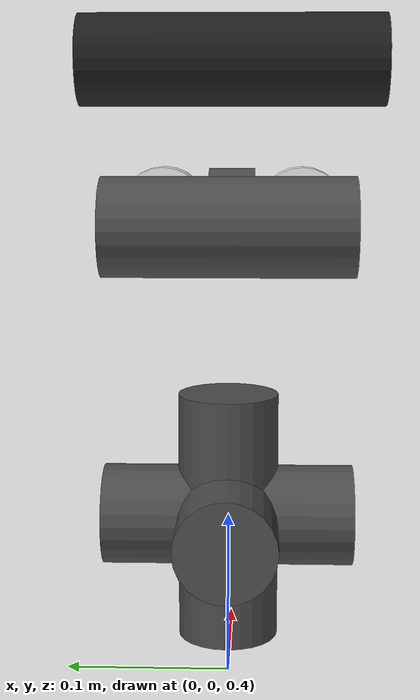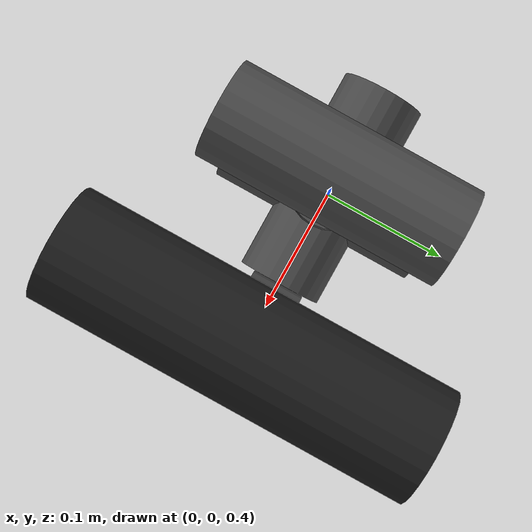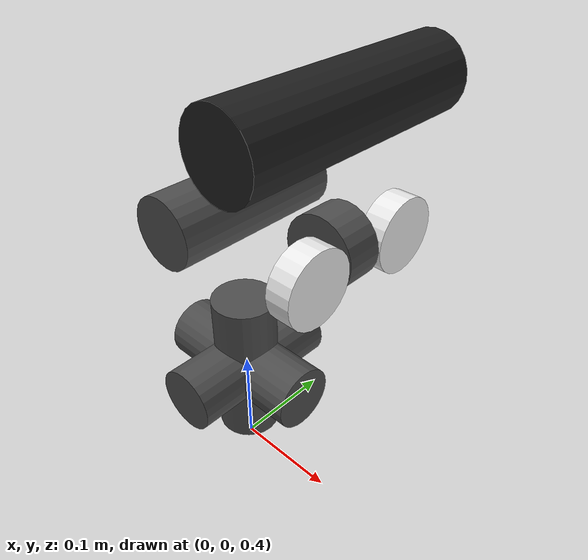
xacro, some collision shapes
<?xml version="1.0"?>
<robot xmlns:xacro="http://www.ros.org/wiki/xacro" name="Eddie">

  <xacro:include filename="$(find kit_head_description)/model/kit_head.urdf.xacro" />

  <link name="world" />

  <xacro:kit_head name="head" parent="world">
    <origin xyz="0.0 0.0 0.5"/>
  </xacro:kit_head>

</robot>

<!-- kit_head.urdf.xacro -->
<robot xmlns:xacro="http://www.ros.org/wiki/xacro">

  <xacro:include filename="$(find kit_head_description)/model/materials.urdf"/>
  <xacro:include filename="$(find kit_head_description)/model/kit_head.inertia.xacro"/>
  <xacro:include filename="$(find kit_head_description)/model/kit_head.transmission.xacro"/>
  <xacro:include filename="$(find kit_head_description)/model/kit_head.gazebo.xacro"/>
  <xacro:include filename="$(find kit_head_description)/model/depth_sensor.gazebo.xacro"/>

  <xacro:property name="M_PI" value="3.1415926535897931" />
  <xacro:property name="velocity_scale_factor" value="1.0"/>

  <xacro:macro name="kit_head" params="parent name *origin">

    <!-- The base of the hand, fixed to its parent. -->
    <joint name="${parent}_${name}_base_joint" type="fixed">
      <xacro:insert_block name="origin"/>
      <parent link="${parent}"/>
      <child link="${name}_base_link"/>
    </joint>

    <link name="${name}_base_link">
      <inertial>
        <xacro:insert_block name="negligible_inertia"/>
      </inertial>
    </link>

    <!-- neck -->
    <joint name="${name}_neck_pitch_joint" type="revolute">
      <origin xyz="0 0 0" rpy="${-1*M_PI/2} 0 0"/>
      <axis xyz="0 0 1"/>
      <limit lower="${-33 * M_PI / 180}" upper="${33 * M_PI / 180}"
             effort="204" velocity="${velocity_scale_factor * 180 * M_PI / 180}" />
      <safety_controller soft_lower_limit="${-33 * M_PI / 180}"
                         soft_upper_limit="${33 * M_PI / 180}"
                         k_position="30"
                         k_velocity="30"/>
      <dynamics friction="1.0" damping="1.0"/>
      <parent link="${name}_base_link"/>
      <child link="${name}_head_1_link"/>
    </joint>

    <link name="${name}_head_1_link">
      <inertial>
        <xacro:insert_block name="negligible_inertia"/>
      </inertial>
      <visual>
        <origin xyz="0 0 0" rpy="0 0 0"/>
        <geometry>
          <cylinder radius="0.03" length="0.15"/>
        </geometry>
        <material name="KIT/DarkGrey"/>
      </visual>
      <collision>
        <origin xyz="0 0 0" rpy="0 0 0"/>
        <geometry>
          <cylinder radius="0.03" length="0.15"/>
        </geometry>
      </collision>
    </link>

    <joint name="${name}_neck_roll_joint" type="revolute">
      <origin xyz="0 0 0" rpy="0 ${M_PI/2} 0"/>
      <axis xyz="0 0 1"/>
      <limit lower="${-28 * M_PI / 180}" upper="${28 * M_PI / 180}"
             effort="204" velocity="${velocity_scale_factor * 180 * M_PI / 180}" />
      <safety_controller soft_lower_limit="${-28 * M_PI / 180}"
                         soft_upper_limit="${28 * M_PI / 180}"
                         k_position="30"
                         k_velocity="30"/>
      <dynamics friction="1.0" damping="1.0"/>
      <parent link="${name}_head_1_link"/>
      <child link="${name}_head_2_link"/>
    </joint>

    <link name="${name}_head_2_link">
      <inertial>
        <xacro:insert_block name="negligible_inertia"/>
      </inertial>
      <visual>
        <origin xyz="0 0 0" rpy="0 0 0"/>
        <geometry>
          <cylinder radius="0.03" length="0.15"/>
        </geometry>
        <material name="KIT/DarkGrey"/>
      </visual>
      <collision>
        <origin xyz="0 0 0" rpy="0 0 0"/>
        <geometry>
          <cylinder radius="0.03" length="0.15"/>
        </geometry>
      </collision>
    </link>

    <joint name="${name}_neck_yaw_joint" type="revolute">
      <origin xyz="0 0 0" rpy="${-1*M_PI/2} ${-1*M_PI/2} 0"/>
      <axis xyz="0 0 1"/>
      <limit lower="${-114 * M_PI / 180}" upper="${114 * M_PI / 180}"
             effort="204" velocity="${velocity_scale_factor * 180 * M_PI / 180}" />
      <safety_controller soft_lower_limit="${-114 * M_PI / 180}"
                         soft_upper_limit="${114 * M_PI / 180}"
                         k_position="30"
                         k_velocity="30"/>
      <dynamics friction="1.0" damping="1.0"/>
      <parent link="${name}_head_2_link"/>
      <child link="${name}_head_3_link"/>
    </joint>

    <link name="${name}_head_3_link">
      <inertial>
        <xacro:insert_block name="negligible_inertia"/>
      </inertial>
      <visual>
        <origin xyz="0 0 0" rpy="0 0 0"/>
        <geometry>
          <cylinder radius="0.03" length="0.15"/>
        </geometry>
        <material name="KIT/DarkGrey"/>
      </visual>
      <collision>
        <origin xyz="0 0 0" rpy="0 0 0"/>
        <geometry>
          <cylinder radius="0.03" length="0.15"/>
        </geometry>
      </collision>
    </link>

    <joint name="${name}_head_tilt_joint" type="revolute">
      <origin xyz="0 0 -0.1745" rpy="${M_PI/2} 0 0"/>
      <axis xyz="0 0 1"/>
      <limit lower="${-40 * M_PI / 180}" upper="${40 * M_PI / 180}"
             effort="204" velocity="${velocity_scale_factor * 180 * M_PI / 180}" />
      <safety_controller soft_lower_limit="${-40 * M_PI / 180}"
                         soft_upper_limit="${40 * M_PI / 180}"
                         k_position="30"
                         k_velocity="30"/>
      <dynamics friction="1.0" damping="1.0"/>
      <parent link="${name}_head_3_link"/>
      <child link="${name}_head_4_link"/>
    </joint>

    <link name="${name}_head_4_link">
      <inertial>
        <xacro:insert_block name="negligible_inertia"/>
      </inertial>
      <visual>
        <origin xyz="0 0 0" rpy="0 0 0"/>
        <geometry>
          <cylinder radius="0.03" length="0.15"/>
        </geometry>
        <material name="KIT/DarkGrey"/>
      </visual>
      <collision>
        <origin xyz="0 0 0" rpy="0 0 0"/>
        <geometry>
          <cylinder radius="0.03" length="0.15"/>
        </geometry>
      </collision>
    </link>

    <joint name="${name}_eyes_tilt_joint" type="revolute">
      <origin xyz="0.1 0 0" rpy="0 0 0"/>
      <axis xyz="0 0 1"/>
      <limit lower="${-20 * M_PI / 180}" upper="${20 * M_PI / 180}"
             effort="204" velocity="${velocity_scale_factor * 180 * M_PI / 180}" />
      <safety_controller soft_lower_limit="${-20 * M_PI / 180}"
                         soft_upper_limit="${20 * M_PI / 180}"
                         k_position="30"
                         k_velocity="30"/>
      <dynamics friction="1.0" damping="1.0"/>
      <parent link="${name}_head_4_link"/>
      <child link="${name}_head_5_link"/>
    </joint>

    <link name="${name}_head_5_link">
      <inertial>
        <xacro:insert_block name="negligible_inertia"/>
      </inertial>
      <visual>
        <origin xyz="0 0 0" rpy="0 0 0"/>
        <geometry>
          <cylinder radius="0.03" length="0.03"/>
        </geometry>
        <material name="KIT/DarkGrey"/>
      </visual>
      <collision>
        <origin xyz="-0.1 0.10 0" rpy="${M_PI/2} 0 0"/>
        <geometry>
          <cylinder radius="0.12" length="0.3"/>
        </geometry>
      </collision>
    </link>

    <joint name="${name}_left_eye_joint" type="revolute">
      <origin xyz="0 0 0.0465" rpy="${M_PI/2} 0 0"/>
      <axis xyz="0 0 1"/>
      <limit lower="${-20 * M_PI / 180}" upper="${20 * M_PI / 180}"
             effort="204" velocity="${velocity_scale_factor * 180 * M_PI / 180}" />
      <safety_controller soft_lower_limit="${-20 * M_PI / 180}"
                         soft_upper_limit="${20 * M_PI / 180}"
                         k_position="30"
                         k_velocity="30"/>
      <dynamics friction="1.0" damping="1.0"/>
      <parent link="${name}_head_5_link"/>
      <child link="${name}_left_eye_link"/>
    </joint>

    <link name="${name}_left_eye_link">
      <inertial>
        <xacro:insert_block name="negligible_inertia"/>
      </inertial>
      <visual>
        <origin xyz="0.02 0 0" rpy="0 ${M_PI/2} 0"/>
        <geometry>
          <cylinder radius="0.03" length="0.02"/>
        </geometry>
        <material name="KIT/White"/>
      </visual>
      <collision>
        <origin xyz="0.02 0 0" rpy="0 ${M_PI/2} 0"/>
        <geometry>
          <cylinder radius="0.03" length="0.02"/>
        </geometry>
      </collision>
    </link>

    <joint name="${name}_right_eye_joint" type="revolute">
      <origin xyz="0 0 -0.0465" rpy="${M_PI/2} 0 0"/>
      <axis xyz="0 0 1"/>
      <limit lower="${-20 * M_PI / 180}" upper="${20 * M_PI / 180}"
             effort="204" velocity="${velocity_scale_factor * 180 * M_PI / 180}" />
      <safety_controller soft_lower_limit="${-20 * M_PI / 180}"
                         soft_upper_limit="${20 * M_PI / 180}"
                         k_position="30"
                         k_velocity="30"/>
      <dynamics friction="1.0" damping="1.0"/>
      <parent link="${name}_head_5_link"/>
      <child link="${name}_right_eye_link"/>
    </joint>

    <link name="${name}_right_eye_link">
      <inertial>
        <xacro:insert_block name="negligible_inertia"/>
      </inertial>
      <visual>
        <origin xyz="0.02 0 0" rpy="0 ${M_PI/2} 0"/>
        <geometry>
          <cylinder radius="0.03" length="0.02"/>
        </geometry>
        <material name="KIT/White"/>
      </visual>
      <collision>
        <origin xyz="0.02 0 0" rpy="0 ${M_PI/2} 0"/>
        <geometry>
          <cylinder radius="0.03" length="0.02"/>
        </geometry>
      </collision>
    </link>

    <joint name="${name}_asus_joint" type="fixed">
      <origin xyz="0 -0.1 0" rpy="1.5707 0.0 0.0"/>
      <parent link="${name}_head_5_link"/>
      <child link="${name}_asus_link"/>
    </joint>

    <link name="${name}_asus_link">
      <inertial>
        <xacro:insert_block name="negligible_inertia"/>
      </inertial>
      <visual>
        <origin xyz="0 0 0" rpy="0 0 0"/>
        <geometry>
          <mesh filename="package://kit_head_description/meshes/asus_xtion_body.stl"/>
        </geometry>
        <material name="KIT/Black"/>
      </visual>
      <collision>
        <origin xyz="0 0 0" rpy="${M_PI/2} 0 0"/>
        <geometry>
          <cylinder radius="0.03" length="0.20"/>
        </geometry>
      </collision>
    </link>

      <!-- ASUS Xtion -->
    <link name="${name}_camera_depth_frame"/>
    <link name="${name}_camera_rgb_frame"/>
    <link name="${name}_camera_depth_optical_frame"/>
    <link name="${name}_camera_rgb_optical_frame"/>

    <joint name="${name}_camera_depth_frame_joint" type="fixed" >
      <origin rpy="0 0 0" xyz="0 0.045 0.02" />
      <parent link="${name}_asus_link"/>
      <child link="${name}_camera_depth_frame"/>
    </joint>

    <joint name="${name}_camera_rgb_frame_joint" type="fixed">
      <origin rpy="0.0 0.0 0.0" xyz="0 0.02 0.02"/>
      <parent link="${name}_asus_link"/>
      <child link="${name}_camera_rgb_frame"/>
    </joint>

    <joint name="${name}_camera_depth_optical_frame_joint" type="fixed" >
      <origin rpy="${-M_PI/2} 0 ${-M_PI/2}" xyz="0 0 0" />
      <parent link="${name}_camera_depth_frame"/>
      <child link="${name}_camera_depth_optical_frame"/>
    </joint>

    <joint name="${name}_camera_rgb_optical_frame_joint" type="fixed" >
      <origin rpy="${-M_PI/2} 0 ${-M_PI/2}" xyz="0 0 0" />
      <parent link="${name}_camera_rgb_frame"/>
      <child link="${name}_camera_rgb_optical_frame"/>
    </joint>

    <xacro:kit_head_transmission name="${name}"/>
    <xacro:kit_head_gazebo name="${name}"/>
    <xacro:head_depth_sensor name="${name}" parent="${name}_asus_link"/>

  </xacro:macro>

</robot>
